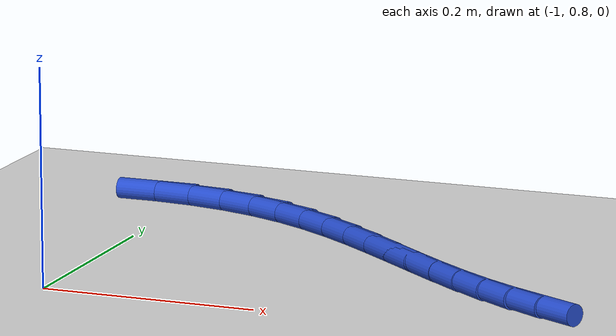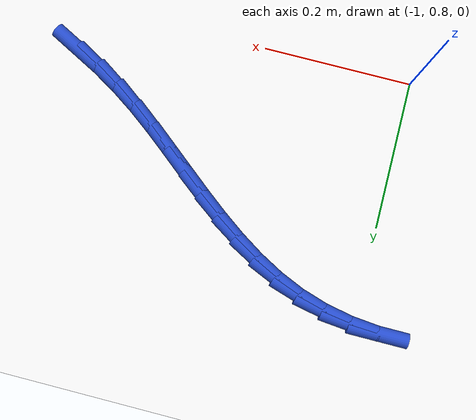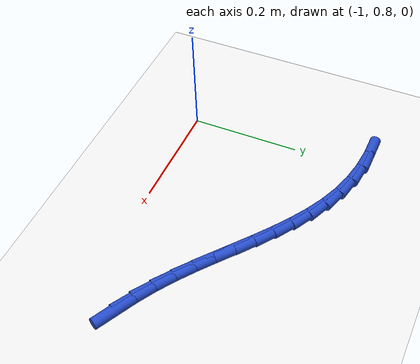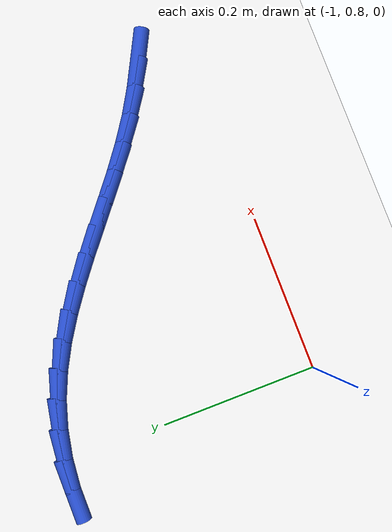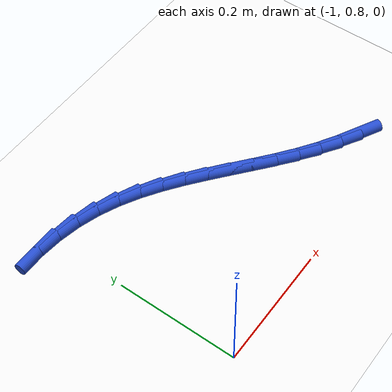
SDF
<sdf version="1.6">
 <world name="default">
  <model name="ground_plane">
   <static>1</static>
   <link name="link">
    <collision name="collision">
     <geometry><plane><normal>0 0 1</normal><size>100 100</size></plane></geometry>
     <surface><friction><ode><mu>100</mu><mu2>50</mu2></ode></friction></surface>
    </collision>
    <visual name="visual">
     <cast_shadows>0</cast_shadows>
     <geometry><plane><normal>0 0 1</normal><size>100 100</size></plane></geometry>
     <material>
      <script><uri>file://media/materials/scripts/gazebo.material</uri><name>Gazebo/WhiteGlow</name></script>
     </material>
    </visual>
   </link>
  </model>
  <model name="line">
   <link name="link_30">
    <pose>-0.5580235060820768 0.8657378897396151 0.01 0 1.57 -0.48276060589552855</pose>
    <collision name="collision">
     <geometry><cylinder><radius>0.01</radius><length>0.08</length></cylinder></geometry>
    </collision>
    <visual name="visual">
     <material>
      <script><name>Gazebo/Blue</name><uri>file://media/materials/scripts/gazebo.material</uri></script>
     </material>
     <geometry><cylinder><radius>0.01</radius><length>0.08</length></cylinder></geometry>
    </visual>
   </link>
   <link name="link_31">
    <pose>-0.5906807016240501 0.8828543335941806 0.01 0 1.57 -0.5386801775550785</pose>
    <collision name="collision">
     <geometry><cylinder><radius>0.01</radius><length>0.08</length></cylinder></geometry>
    </collision>
    <visual name="visual">
     <material>
      <script><name>Gazebo/Blue</name><uri>file://media/materials/scripts/gazebo.material</uri></script>
     </material>
     <geometry><cylinder><radius>0.01</radius><length>0.08</length></cylinder></geometry>
    </visual>
   </link>
   <link name="link_32">
    <pose>-0.6223054388526957 0.9017544461950724 0.01 0 1.57 -0.5998490313299457</pose>
    <collision name="collision">
     <geometry><cylinder><radius>0.01</radius><length>0.08</length></cylinder></geometry>
    </collision>
    <visual name="visual">
     <material>
      <script><name>Gazebo/Blue</name><uri>file://media/materials/scripts/gazebo.material</uri></script>
     </material>
     <geometry><cylinder><radius>0.01</radius><length>0.08</length></cylinder></geometry>
    </visual>
   </link>
   <link name="link_33">
    <pose>-0.6527743945038681 0.922592628175387 0.01 0 1.57 -0.6461284967187175</pose>
    <collision name="collision">
     <geometry><cylinder><radius>0.01</radius><length>0.08</length></cylinder></geometry>
    </collision>
    <visual name="visual">
     <material>
      <script><name>Gazebo/Blue</name><uri>file://media/materials/scripts/gazebo.material</uri></script>
     </material>
     <geometry><cylinder><radius>0.01</radius><length>0.08</length></cylinder></geometry>
    </visual>
   </link>
   <link name="link_34">
    <pose>-0.6823450294410981 0.9448922404864786 0.01 0 1.57 -0.6755627695601314</pose>
    <collision name="collision">
     <geometry><cylinder><radius>0.01</radius><length>0.08</length></cylinder></geometry>
    </collision>
    <visual name="visual">
     <material>
      <script><name>Gazebo/Blue</name><uri>file://media/materials/scripts/gazebo.material</uri></script>
     </material>
     <geometry><cylinder><radius>0.01</radius><length>0.08</length></cylinder></geometry>
    </visual>
   </link>
   <link name="link_35">
    <pose>-0.7113161158697496 0.9681081824656042 0.01 0 1.57 -0.6884321826403728</pose>
    <collision name="collision">
     <geometry><cylinder><radius>0.01</radius><length>0.08</length></cylinder></geometry>
    </collision>
    <visual name="visual">
     <material>
      <script><name>Gazebo/Blue</name><uri>file://media/materials/scripts/gazebo.material</uri></script>
     </material>
     <geometry><cylinder><radius>0.01</radius><length>0.08</length></cylinder></geometry>
    </visual>
   </link>
   <link name="link_36">
    <pose>-0.7399864259951874 0.9916953534500205 0.01 0 1.57 -0.6848390199379392</pose>
    <collision name="collision">
     <geometry><cylinder><radius>0.01</radius><length>0.08</length></cylinder></geometry>
    </collision>
    <visual name="visual">
     <material>
      <script><name>Gazebo/Blue</name><uri>file://media/materials/scripts/gazebo.material</uri></script>
     </material>
     <geometry><cylinder><radius>0.01</radius><length>0.08</length></cylinder></geometry>
    </visual>
   </link>
   <link name="link_37">
    <pose>-0.7686547320227759 1.0151086527769853 0.01 0 1.57 -0.6646027736693845</pose>
    <collision name="collision">
     <geometry><cylinder><radius>0.01</radius><length>0.08</length></cylinder></geometry>
    </collision>
    <visual name="visual">
     <material>
      <script><name>Gazebo/Blue</name><uri>file://media/materials/scripts/gazebo.material</uri></script>
     </material>
     <geometry><cylinder><radius>0.01</radius><length>0.08</length></cylinder></geometry>
    </visual>
   </link>
   <link name="link_38">
    <pose>-0.7976198061578796 1.0378029797837554 0.01 0 1.57 -0.6272817728584842</pose>
    <collision name="collision">
     <geometry><cylinder><radius>0.01</radius><length>0.08</length></cylinder></geometry>
    </collision>
    <visual name="visual">
     <material>
      <script><name>Gazebo/Blue</name><uri>file://media/materials/scripts/gazebo.material</uri></script>
     </material>
     <geometry><cylinder><radius>0.01</radius><length>0.08</length></cylinder></geometry>
    </visual>
   </link>
   <link name="link_39">
    <pose>-0.8271804206058635 1.0592332338075883 0.01 0 1.57 -0.5723338704626014</pose>
    <collision name="collision">
     <geometry><cylinder><radius>0.01</radius><length>0.08</length></cylinder></geometry>
    </collision>
    <visual name="visual">
     <material>
      <script><name>Gazebo/Blue</name><uri>file://media/materials/scripts/gazebo.material</uri></script>
     </material>
     <geometry><cylinder><radius>0.01</radius><length>0.08</length></cylinder></geometry>
    </visual>
   </link>
   <link name="link_40">
    <pose>-0.8576353475720917 1.078854314185741 0.01 0 1.57 -0.4994503161614712</pose>
    <collision name="collision">
     <geometry><cylinder><radius>0.01</radius><length>0.08</length></cylinder></geometry>
    </collision>
    <visual name="visual">
     <material>
      <script><name>Gazebo/Blue</name><uri>file://media/materials/scripts/gazebo.material</uri></script>
     </material>
     <geometry><cylinder><radius>0.01</radius><length>0.08</length></cylinder></geometry>
    </visual>
   </link>
   <link name="link_41">
    <pose>-0.8892833592619287 1.0961211202554706 0.01 0 1.57 -0.4090811106167614</pose>
    <collision name="collision">
     <geometry><cylinder><radius>0.01</radius><length>0.08</length></cylinder></geometry>
    </collision>
    <visual name="visual">
     <material>
      <script><name>Gazebo/Blue</name><uri>file://media/materials/scripts/gazebo.material</uri></script>
     </material>
     <geometry><cylinder><radius>0.01</radius><length>0.08</length></cylinder></geometry>
    </visual>
   </link>
   <link name="link_42">
    <pose>-0.9224232278807389 1.1104885513540341 0.01 0 1.57 -0.30399746329364485</pose>
    <collision name="collision">
     <geometry><cylinder><radius>0.01</radius><length>0.08</length></cylinder></geometry>
    </collision>
    <visual name="visual">
     <material>
      <script><name>Gazebo/Blue</name><uri>file://media/materials/scripts/gazebo.material</uri></script>
     </material>
     <geometry><cylinder><radius>0.01</radius><length>0.08</length></cylinder></geometry>
    </visual>
   </link>
   <link name="link_43">
    <pose>-0.9573178319602756 1.121435744890637 0.01 0 1.57 -0.1979942934456531</pose>
    <collision name="collision">
     <geometry><cylinder><radius>0.01</radius><length>0.08</length></cylinder></geometry>
    </collision>
    <visual name="visual">
     <material>
      <script><name>Gazebo/Blue</name><uri>file://media/materials/scripts/gazebo.material</uri></script>
     </material>
     <geometry><cylinder><radius>0.01</radius><length>0.08</length></cylinder></geometry>
    </visual>
   </link>
   <link name="link_44">
    <pose>-0.9937741315726573 1.128749708250298 0.01 0 1.57 -0.09777769361011011</pose>
    <collision name="collision">
     <geometry><cylinder><radius>0.01</radius><length>0.08</length></cylinder></geometry>
    </collision>
    <visual name="visual">
     <material>
      <script><name>Gazebo/Blue</name><uri>file://media/materials/scripts/gazebo.material</uri></script>
     </material>
     <geometry><cylinder><radius>0.01</radius><length>0.08</length></cylinder></geometry>
    </visual>
   </link>
   <link name="link_45">
    <pose>-1.031285485926691 1.1324292153920001 0.01 0 1.57 -0.0012612365559044373</pose>
    <collision name="collision">
     <geometry><cylinder><radius>0.01</radius><length>0.08</length></cylinder></geometry>
    </collision>
    <visual name="visual">
     <material>
      <script><name>Gazebo/Blue</name><uri>file://media/materials/scripts/gazebo.material</uri></script>
     </material>
     <geometry><cylinder><radius>0.01</radius><length>0.08</length></cylinder></geometry>
    </visual>
   </link>
  </model>
 </world>
</sdf>
